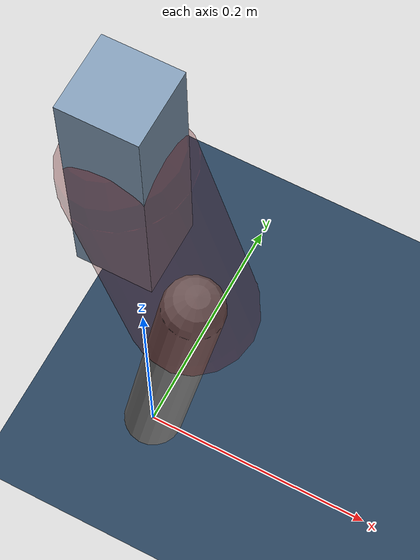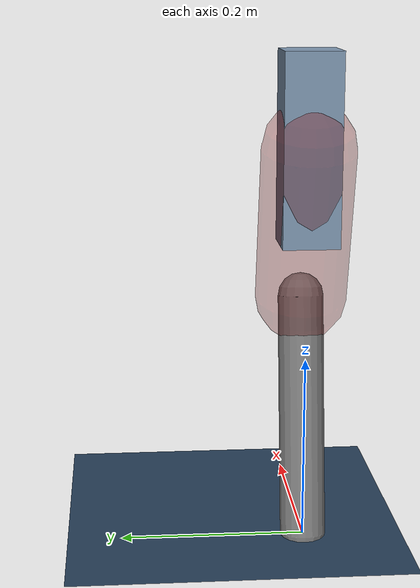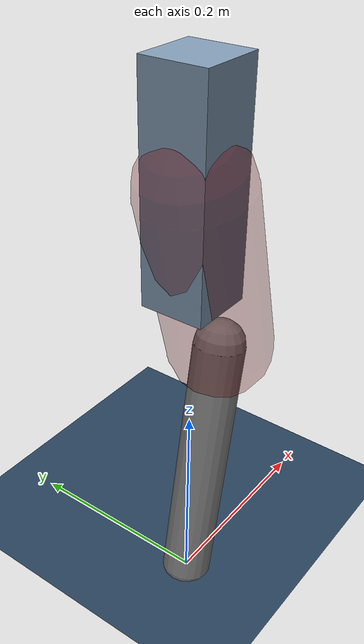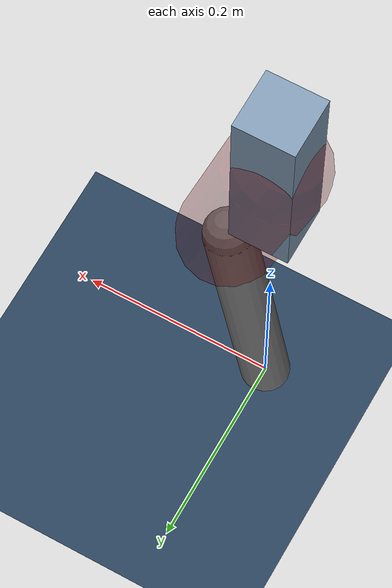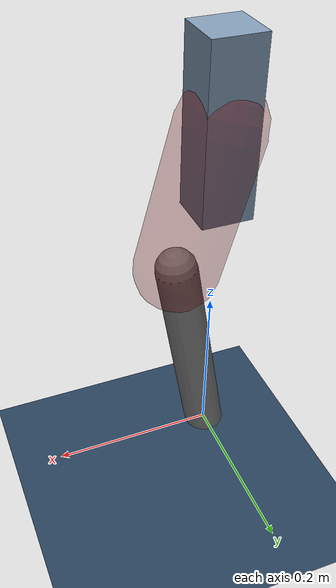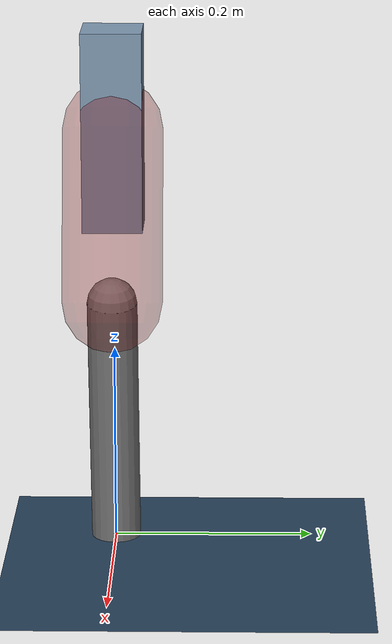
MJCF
<mujoco model="Hopper2D">
	<compiler inertiafromgeom="true" angle="radian" />
	<option timestep="0.001" integrator="implicit" cone="elliptic" solver="Newton" tolerance="1e-10" />

	<default>
		<geom contype="1" conaffinity="1" condim="3" friction="2 0.005 0.0001" solref="0.005 1" />
		<joint limited="true" damping="0.1" />
	</default>

	<asset>
		<texture name="skybox" type="skybox" builtin="gradient" rgb1=".4 .6 .8" rgb2="0 0 0" width="800" height="800" />
		<texture name="grid" type="2d" builtin="checker" rgb1=".1 .2 .3" rgb2=".2 .3 .4" width="300" height="300" mark="edge" markrgb=".2 .3 .4" />
		<material name="ground" texture="grid" texrepeat="1 1" texuniform="true" reflectance="0.1" />
		<material name="leg" rgba="0.5 0.6 0.7 1" />
	</asset>

	<worldbody>

		<geom name="floor" type="plane" size="5 5 0.25" material="ground" />

		<light directional="false" diffuse="0.8 0.8 0.8" specular="0.3 0.3 0.3" pos="0 0 2" dir="0 0 -1" />
		<light mode="targetbodycom" target="base" directional="false" diffuse="0.8 0.8 0.8" specular="0.3 0.3 0.3" pos="0 0 2" dir="0 0 -1" />

		<camera name="fixed" pos="0 -2 1" xyaxes="1 0 0 0 0 1" />
		<camera name="tracking" mode="trackcom" pos="0 -3 1" />

		<body name="root" pos="0 0 0.42733164183497013">
			<joint name="slide_x" type="slide" axis="1 0 0" range="-100 100" />
			<joint name="slide_z" type="slide" axis="0 0 1" range="0 10" />

			<body name="base" pos="0 0 0">
				<geom name="torso" type="box" size="0.03 0.03 0.1" mass="2.899" material="leg" />

				<body name="link1" pos="0 0 0" euler="0 1.30475657409238 0">
					<joint type="hinge" axis="0 -1 0" pos="0 0 0" name="hinge1" limited="true" range="-3.14 3.14" stiffness="0" damping="0.1" />
					<geom name="thigh" type="capsule" fromto="0 0 0 0.17270004261372401 0 0" size="0.05" rgba="0.5 0 0 0.3" mass="0.6627801022729377" />

					<body name="link2" pos="0.17270004261372401 0 0" euler="0 0.43847115911272355 0">
						<joint type="hinge" axis="0 -1 0" pos="0 0 0" name="hinge2" limited="true" range="-3.14 3.14" stiffness="0" damping="0.1" />
						<geom name="shank" type="capsule" fromto="0 0 0 0.2646315992212461 0 0" size="0.025" mass="0.45456843929912155" />

					</body>
				</body>
			</body>
		</body>
	</worldbody>

	<actuator>
		<motor name="torque1" joint="hinge1" ctrlrange="-103.7426552208634 103.7426552208634" ctrllimited="true" gear="1" />
		<motor name="torque2" joint="hinge2" ctrlrange="-106.24327452741366 106.24327452741366" ctrllimited="true" gear="1" />
	</actuator>
</mujoco>
